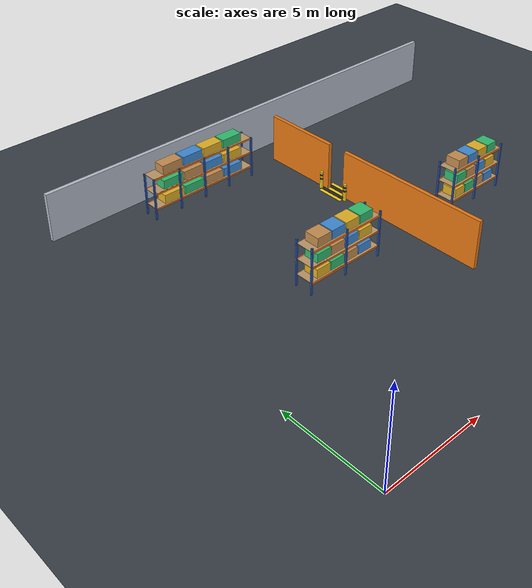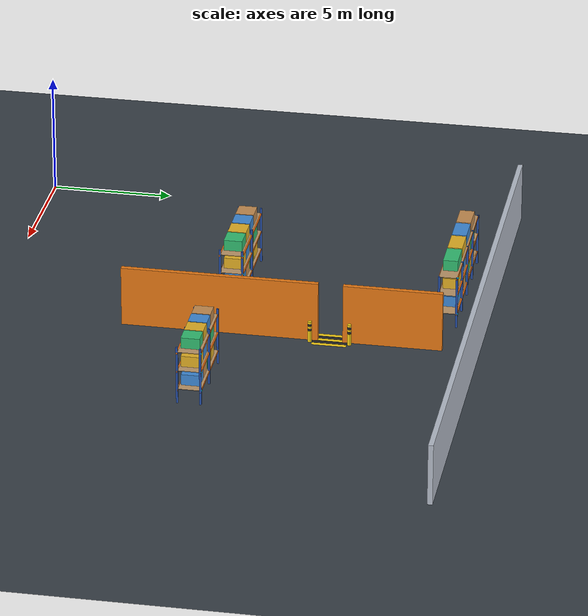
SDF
<sdf version="1.10">
 <world name="warehouse_s4">
  <model name="ground_plane">
   <static>true</static>
   <link name="link">
    <collision name="collision">
     <geometry><plane><normal>0 0 1</normal><size>25 20</size></plane></geometry>
    </collision>
    <visual name="visual">
     <geometry><plane><normal>0 0 1</normal><size>25 20</size></plane></geometry>
     <material>
      <ambient>0.22 0.25 0.28 1</ambient>
      <diffuse>0.22 0.25 0.28 1</diffuse>
      <specular>0.08 0.08 0.08 1</specular>
     </material>
    </visual>
    <pose>12.0 9.5 0 0 0 0</pose>
   </link>
  </model>
  <model name="wall_south">
   <static>true</static>
   <pose>12.0 19.9 1.25 0 0 0</pose>
   <link name="link">
    <collision name="c"><geometry><box><size>25.0 0.2 2.5</size></box></geometry></collision>
    <visual name="v">
     <geometry><box><size>25.0 0.2 2.5</size></box></geometry>
     <material>
      <ambient>0.65 0.68 0.72 1</ambient>
      <diffuse>0.72 0.75 0.80 1</diffuse>
      <specular>0.15 0.15 0.15 1</specular>
     </material>
    </visual>
   </link>
  </model>
  <model name="divider_north">
   <static>true</static>
   <pose>12.0 16.5 1.25 0 0 0</pose>
   <link name="link">
    <collision name="c"><geometry><box><size>0.2 4.0 2.5</size></box></geometry></collision>
    <visual name="v">
     <geometry><box><size>0.2 4.0 2.5</size></box></geometry>
     <material>
      <ambient>0.92 0.48 0.08 1</ambient>
      <diffuse>0.92 0.48 0.08 1</diffuse>
      <specular>0.25 0.25 0.25 1</specular>
     </material>
    </visual>
   </link>
  </model>
  <model name="divider_middle">
   <static>true</static>
   <pose>12.0 9.5 1.25 0 0 0</pose>
   <link name="link">
    <collision name="c"><geometry><box><size>0.2 8.0 2.5</size></box></geometry></collision>
    <visual name="v">
     <geometry><box><size>0.2 8.0 2.5</size></box></geometry>
     <material>
      <ambient>0.92 0.48 0.08 1</ambient>
      <diffuse>0.92 0.48 0.08 1</diffuse>
      <specular>0.25 0.25 0.25 1</specular>
     </material>
    </visual>
   </link>
  </model>
  <model name="choke_hazard_north">
   <static>true</static>
   <pose>12.000 14.000 0 0 0 0</pose>
   <link name="link">
    <visual name="stripe_0">
     <pose>-0.400 0 0.004 0 0 0</pose>
     <geometry><box><size>0.18 1.40 0.003</size></box></geometry>
     <material><ambient>0.95 0.75 0.05 1</ambient><diffuse>0.98 0.82 0.08 1</diffuse></material>
    </visual>
    <visual name="stripe_1">
     <pose>-0.200 0 0.004 0 0 0</pose>
     <geometry><box><size>0.18 1.40 0.003</size></box></geometry>
     <material><ambient>0.1 0.1 0.1 1</ambient><diffuse>0.15 0.15 0.15 1</diffuse></material>
    </visual>
    <visual name="stripe_2">
     <pose>0.000 0 0.004 0 0 0</pose>
     <geometry><box><size>0.18 1.40 0.003</size></box></geometry>
     <material><ambient>0.95 0.75 0.05 1</ambient><diffuse>0.98 0.82 0.08 1</diffuse></material>
    </visual>
    <visual name="stripe_3">
     <pose>0.200 0 0.004 0 0 0</pose>
     <geometry><box><size>0.18 1.40 0.003</size></box></geometry>
     <material><ambient>0.1 0.1 0.1 1</ambient><diffuse>0.15 0.15 0.15 1</diffuse></material>
    </visual>
    <visual name="stripe_4">
     <pose>0.400 0 0.004 0 0 0</pose>
     <geometry><box><size>0.18 1.40 0.003</size></box></geometry>
     <material><ambient>0.95 0.75 0.05 1</ambient><diffuse>0.98 0.82 0.08 1</diffuse></material>
    </visual>
   </link>
  </model>
  <model name="bollard_n_nw">
   <static>true</static>
   <pose>11.750 14.800 0.0 0 0 0</pose>
   <link name="link">
    <visual name="post">
     <pose>0 0 0.45 0 0 0</pose>
     <geometry><cylinder><radius>0.08</radius><length>0.90</length></cylinder></geometry>
     <material>
      <ambient>0.95 0.75 0.05 1</ambient>
      <diffuse>0.98 0.82 0.08 1</diffuse>
      <specular>0.5 0.5 0.5 1</specular>
     </material>
    </visual>
    <visual name="stripe1">
     <pose>0 0 0.55 0 0 0</pose>
     <geometry><cylinder><radius>0.082</radius><length>0.10</length></cylinder></geometry>
     <material><ambient>0.1 0.1 0.1 1</ambient><diffuse>0.15 0.15 0.15 1</diffuse></material>
    </visual>
    <visual name="stripe2">
     <pose>0 0 0.75 0 0 0</pose>
     <geometry><cylinder><radius>0.082</radius><length>0.10</length></cylinder></geometry>
     <material><ambient>0.1 0.1 0.1 1</ambient><diffuse>0.15 0.15 0.15 1</diffuse></material>
    </visual>
   </link>
  </model>
  <model name="bollard_n_sw">
   <static>true</static>
   <pose>11.750 13.200 0.0 0 0 0</pose>
   <link name="link">
    <visual name="post">
     <pose>0 0 0.45 0 0 0</pose>
     <geometry><cylinder><radius>0.08</radius><length>0.90</length></cylinder></geometry>
     <material>
      <ambient>0.95 0.75 0.05 1</ambient>
      <diffuse>0.98 0.82 0.08 1</diffuse>
      <specular>0.5 0.5 0.5 1</specular>
     </material>
    </visual>
    <visual name="stripe1">
     <pose>0 0 0.55 0 0 0</pose>
     <geometry><cylinder><radius>0.082</radius><length>0.10</length></cylinder></geometry>
     <material><ambient>0.1 0.1 0.1 1</ambient><diffuse>0.15 0.15 0.15 1</diffuse></material>
    </visual>
    <visual name="stripe2">
     <pose>0 0 0.75 0 0 0</pose>
     <geometry><cylinder><radius>0.082</radius><length>0.10</length></cylinder></geometry>
     <material><ambient>0.1 0.1 0.1 1</ambient><diffuse>0.15 0.15 0.15 1</diffuse></material>
    </visual>
   </link>
  </model>
  <model name="bollard_n_ne">
   <static>true</static>
   <pose>12.250 14.800 0.0 0 0 0</pose>
   <link name="link">
    <visual name="post">
     <pose>0 0 0.45 0 0 0</pose>
     <geometry><cylinder><radius>0.08</radius><length>0.90</length></cylinder></geometry>
     <material>
      <ambient>0.95 0.75 0.05 1</ambient>
      <diffuse>0.98 0.82 0.08 1</diffuse>
      <specular>0.5 0.5 0.5 1</specular>
     </material>
    </visual>
    <visual name="stripe1">
     <pose>0 0 0.55 0 0 0</pose>
     <geometry><cylinder><radius>0.082</radius><length>0.10</length></cylinder></geometry>
     <material><ambient>0.1 0.1 0.1 1</ambient><diffuse>0.15 0.15 0.15 1</diffuse></material>
    </visual>
    <visual name="stripe2">
     <pose>0 0 0.75 0 0 0</pose>
     <geometry><cylinder><radius>0.082</radius><length>0.10</length></cylinder></geometry>
     <material><ambient>0.1 0.1 0.1 1</ambient><diffuse>0.15 0.15 0.15 1</diffuse></material>
    </visual>
   </link>
  </model>
  <model name="bollard_n_se">
   <static>true</static>
   <pose>12.250 13.200 0.0 0 0 0</pose>
   <link name="link">
    <visual name="post">
     <pose>0 0 0.45 0 0 0</pose>
     <geometry><cylinder><radius>0.08</radius><length>0.90</length></cylinder></geometry>
     <material>
      <ambient>0.95 0.75 0.05 1</ambient>
      <diffuse>0.98 0.82 0.08 1</diffuse>
      <specular>0.5 0.5 0.5 1</specular>
     </material>
    </visual>
    <visual name="stripe1">
     <pose>0 0 0.55 0 0 0</pose>
     <geometry><cylinder><radius>0.082</radius><length>0.10</length></cylinder></geometry>
     <material><ambient>0.1 0.1 0.1 1</ambient><diffuse>0.15 0.15 0.15 1</diffuse></material>
    </visual>
    <visual name="stripe2">
     <pose>0 0 0.75 0 0 0</pose>
     <geometry><cylinder><radius>0.082</radius><length>0.10</length></cylinder></geometry>
     <material><ambient>0.1 0.1 0.1 1</ambient><diffuse>0.15 0.15 0.15 1</diffuse></material>
    </visual>
   </link>
  </model>
  <model name="rack_right_center">
   <static>true</static>
   <pose>16.500 9.500 0.000 0 0 0.0000</pose>
   <link name="link">
    <visual name="post_1">
     <pose>-1.760 -0.460 1.200 0 0 0</pose>
     <geometry><box><size>0.08 0.08 2.400</size></box></geometry>
     <material>
      <ambient>0.10 0.20 0.45 1</ambient>
      <diffuse>0.15 0.32 0.68 1</diffuse>
      <specular>0.3 0.3 0.3 1</specular>
     </material>
    </visual>
    <visual name="post_2">
     <pose>-1.760 0.460 1.200 0 0 0</pose>
     <geometry><box><size>0.08 0.08 2.400</size></box></geometry>
     <material>
      <ambient>0.10 0.20 0.45 1</ambient>
      <diffuse>0.15 0.32 0.68 1</diffuse>
      <specular>0.3 0.3 0.3 1</specular>
     </material>
    </visual>
    <visual name="post_3">
     <pose>1.760 -0.460 1.200 0 0 0</pose>
     <geometry><box><size>0.08 0.08 2.400</size></box></geometry>
     <material>
      <ambient>0.10 0.20 0.45 1</ambient>
      <diffuse>0.15 0.32 0.68 1</diffuse>
      <specular>0.3 0.3 0.3 1</specular>
     </material>
    </visual>
    <visual name="post_4">
     <pose>1.760 0.460 1.200 0 0 0</pose>
     <geometry><box><size>0.08 0.08 2.400</size></box></geometry>
     <material>
      <ambient>0.10 0.20 0.45 1</ambient>
      <diffuse>0.15 0.32 0.68 1</diffuse>
      <specular>0.3 0.3 0.3 1</specular>
     </material>
    </visual>
    <visual name="post_5">
     <pose>0.000 -0.460 1.200 0 0 0</pose>
     <geometry><box><size>0.08 0.08 2.400</size></box></geometry>
     <material>
      <ambient>0.10 0.20 0.45 1</ambient>
      <diffuse>0.15 0.32 0.68 1</diffuse>
      <specular>0.3 0.3 0.3 1</specular>
     </material>
    </visual>
    <visual name="post_6">
     <pose>0.000 0.460 1.200 0 0 0</pose>
     <geometry><box><size>0.08 0.08 2.400</size></box></geometry>
     <material>
      <ambient>0.10 0.20 0.45 1</ambient>
      <diffuse>0.15 0.32 0.68 1</diffuse>
      <specular>0.3 0.3 0.3 1</specular>
     </material>
    </visual>
    <visual name="beam_front_1">
     <pose>0 -0.460 0.550 0 0 0</pose>
     <geometry><box><size>3.600 0.05 0.08</size></box></geometry>
     <material>
      <ambient>0.85 0.35 0.05 1</ambient>
      <diffuse>0.95 0.45 0.08 1</diffuse>
      <specular>0.2 0.2 0.2 1</specular>
     </material>
    </visual>
    <visual name="beam_back_1">
     <pose>0 0.460 0.550 0 0 0</pose>
     <geometry><box><size>3.600 0.05 0.08</size></box></geometry>
     <material>
      <ambient>0.85 0.35 0.05 1</ambient>
      <diffuse>0.95 0.45 0.08 1</diffuse>
      <specular>0.2 0.2 0.2 1</specular>
     </material>
    </visual>
    <visual name="deck_1">
     <pose>0 0 0.580 0 0 0</pose>
     <geometry><box><size>3.500 0.940 0.02</size></box></geometry>
     <material>
      <ambient>0.60 0.48 0.32 1</ambient>
      <diffuse>0.75 0.60 0.42 1</diffuse>
      <specular>0.1 0.1 0.1 1</specular>
     </material>
    </visual>
    <visual name="cargo_t1_b1">
     <pose>-1.080 0 0.825 0 0 0</pose>
     <geometry><box><size>0.675 0.750 0.450</size></box></geometry>
     <material><ambient>0.75 0.55 0.10 1</ambient><diffuse>0.90 0.70 0.15 1</diffuse></material>
    </visual>
    <visual name="cargo_t1_b2">
     <pose>-0.360 0 0.825 0 0 0</pose>
     <geometry><box><size>0.675 0.750 0.450</size></box></geometry>
     <material><ambient>0.15 0.60 0.35 1</ambient><diffuse>0.20 0.75 0.45 1</diffuse></material>
    </visual>
    <visual name="cargo_t1_b3">
     <pose>0.360 0 0.825 0 0 0</pose>
     <geometry><box><size>0.675 0.750 0.450</size></box></geometry>
     <material><ambient>0.65 0.45 0.25 1</ambient><diffuse>0.78 0.56 0.32 1</diffuse></material>
    </visual>
    <visual name="cargo_t1_b4">
     <pose>1.080 0 0.825 0 0 0</pose>
     <geometry><box><size>0.675 0.750 0.450</size></box></geometry>
     <material><ambient>0.20 0.45 0.70 1</ambient><diffuse>0.25 0.55 0.85 1</diffuse></material>
    </visual>
    <visual name="led_indicator_1">
     <pose>1.760 0.500 0.600 0 0 0</pose>
     <geometry><sphere><radius>0.035</radius></sphere></geometry>
     <material>
      <ambient>0.0 0.85 1.0 1</ambient>
      <diffuse>0.0 0.95 1.0 1</diffuse>
      <specular>1 1 1 1</specular>
     </material>
    </visual>
    <visual name="beam_front_2">
     <pose>0 -0.460 1.350 0 0 0</pose>
     <geometry><box><size>3.600 0.05 0.08</size></box></geometry>
     <material>
      <ambient>0.85 0.35 0.05 1</ambient>
      <diffuse>0.95 0.45 0.08 1</diffuse>
      <specular>0.2 0.2 0.2 1</specular>
     </material>
    </visual>
    <visual name="beam_back_2">
     <pose>0 0.460 1.350 0 0 0</pose>
     <geometry><box><size>3.600 0.05 0.08</size></box></geometry>
     <material>
      <ambient>0.85 0.35 0.05 1</ambient>
      <diffuse>0.95 0.45 0.08 1</diffuse>
      <specular>0.2 0.2 0.2 1</specular>
     </material>
    </visual>
    <visual name="deck_2">
     <pose>0 0 1.380 0 0 0</pose>
     <geometry><box><size>3.500 0.940 0.02</size></box></geometry>
     <material>
      <ambient>0.60 0.48 0.32 1</ambient>
      <diffuse>0.75 0.60 0.42 1</diffuse>
      <specular>0.1 0.1 0.1 1</specular>
     </material>
    </visual>
    <visual name="cargo_t2_b1">
     <pose>-1.080 0 1.625 0 0 0</pose>
     <geometry><box><size>0.675 0.750 0.450</size></box></geometry>
     <material><ambient>0.15 0.60 0.35 1</ambient><diffuse>0.20 0.75 0.45 1</diffuse></material>
    </visual>
    <visual name="cargo_t2_b2">
     <pose>-0.360 0 1.625 0 0 0</pose>
     <geometry><box><size>0.675 0.750 0.450</size></box></geometry>
     <material><ambient>0.65 0.45 0.25 1</ambient><diffuse>0.78 0.56 0.32 1</diffuse></material>
    </visual>
    <visual name="cargo_t2_b3">
     <pose>0.360 0 1.625 0 0 0</pose>
     <geometry><box><size>0.675 0.750 0.450</size></box></geometry>
     <material><ambient>0.20 0.45 0.70 1</ambient><diffuse>0.25 0.55 0.85 1</diffuse></material>
    </visual>
    <visual name="cargo_t2_b4">
     <pose>1.080 0 1.625 0 0 0</pose>
     <geometry><box><size>0.675 0.750 0.450</size></box></geometry>
     <material><ambient>0.75 0.55 0.10 1</ambient><diffuse>0.90 0.70 0.15 1</diffuse></material>
    </visual>
    <visual name="led_indicator_2">
     <pose>1.760 0.500 1.400 0 0 0</pose>
     <geometry><sphere><radius>0.035</radius></sphere></geometry>
     <material>
      <ambient>0.0 0.85 1.0 1</ambient>
      <diffuse>0.0 0.95 1.0 1</diffuse>
      <specular>1 1 1 1</specular>
     </material>
    </visual>
    <visual name="beam_front_3">
     <pose>0 -0.460 2.150 0 0 0</pose>
     <geometry><box><size>3.600 0.05 0.08</size></box></geometry>
     <material>
      <ambient>0.85 0.35 0.05 1</ambient>
      <diffuse>0.95 0.45 0.08 1</diffuse>
      <specular>0.2 0.2 0.2 1</specular>
     </material>
    </visual>
    <visual name="beam_back_3">
     <pose>0 0.460 2.150 0 0 0</pose>
     <geometry><box><size>3.600 0.05 0.08</size></box></geometry>
     <material>
      <ambient>0.85 0.35 0.05 1</ambient>
      <diffuse>0.95 0.45 0.08 1</diffuse>
      <specular>0.2 0.2 0.2 1</specular>
     </material>
    </visual>
    <visual name="deck_3">
     <pose>0 0 2.180 0 0 0</pose>
     <geometry><box><size>3.500 0.940 0.02</size></box></geometry>
     <material>
      <ambient>0.60 0.48 0.32 1</ambient>
      <diffuse>0.75 0.60 0.42 1</diffuse>
      <specular>0.1 0.1 0.1 1</specular>
     </material>
    </visual>
    <visual name="cargo_t3_b1">
     <pose>-1.080 0 2.425 0 0 0</pose>
     <geometry><box><size>0.675 0.750 0.450</size></box></geometry>
     <material><ambient>0.65 0.45 0.25 1</ambient><diffuse>0.78 0.56 0.32 1</diffuse></material>
    </visual>
    <visual name="cargo_t3_b2">
     <pose>-0.360 0 2.425 0 0 0</pose>
     <geometry><box><size>0.675 0.750 0.450</size></box></geometry>
     <material><ambient>0.20 0.45 0.70 1</ambient><diffuse>0.25 0.55 0.85 1</diffuse></material>
    </visual>
    <visual name="cargo_t3_b3">
     <pose>0.360 0 2.425 0 0 0</pose>
     <geometry><box><size>0.675 0.750 0.450</size></box></geometry>
     <material><ambient>0.75 0.55 0.10 1</ambient><diffuse>0.90 0.70 0.15 1</diffuse></material>
    </visual>
    <visual name="cargo_t3_b4">
     <pose>1.080 0 2.425 0 0 0</pose>
     <geometry><box><size>0.675 0.750 0.450</size></box></geometry>
     <material><ambient>0.15 0.60 0.35 1</ambient><diffuse>0.20 0.75 0.45 1</diffuse></material>
    </visual>
    <visual name="led_indicator_3">
     <pose>1.760 0.500 2.200 0 0 0</pose>
     <geometry><sphere><radius>0.035</radius></sphere></geometry>
     <material>
      <ambient>0.0 0.85 1.0 1</ambient>
      <diffuse>0.0 0.95 1.0 1</diffuse>
      <specular>1 1 1 1</specular>
     </material>
    </visual>
   </link>
  </model>
  <model name="rack_left_center">
   <static>true</static>
   <pose>7.500 9.500 0.000 0 0 0.0000</pose>
   <link name="link">
    <visual name="post_1">
     <pose>-2.060 -0.460 1.200 0 0 0</pose>
     <geometry><box><size>0.08 0.08 2.400</size></box></geometry>
     <material>
      <ambient>0.10 0.20 0.45 1</ambient>
      <diffuse>0.15 0.32 0.68 1</diffuse>
      <specular>0.3 0.3 0.3 1</specular>
     </material>
    </visual>
    <visual name="post_2">
     <pose>-2.060 0.460 1.200 0 0 0</pose>
     <geometry><box><size>0.08 0.08 2.400</size></box></geometry>
     <material>
      <ambient>0.10 0.20 0.45 1</ambient>
      <diffuse>0.15 0.32 0.68 1</diffuse>
      <specular>0.3 0.3 0.3 1</specular>
     </material>
    </visual>
    <visual name="post_3">
     <pose>2.060 -0.460 1.200 0 0 0</pose>
     <geometry><box><size>0.08 0.08 2.400</size></box></geometry>
     <material>
      <ambient>0.10 0.20 0.45 1</ambient>
      <diffuse>0.15 0.32 0.68 1</diffuse>
      <specular>0.3 0.3 0.3 1</specular>
     </material>
    </visual>
    <visual name="post_4">
     <pose>2.060 0.460 1.200 0 0 0</pose>
     <geometry><box><size>0.08 0.08 2.400</size></box></geometry>
     <material>
      <ambient>0.10 0.20 0.45 1</ambient>
      <diffuse>0.15 0.32 0.68 1</diffuse>
      <specular>0.3 0.3 0.3 1</specular>
     </material>
    </visual>
    <visual name="post_5">
     <pose>0.000 -0.460 1.200 0 0 0</pose>
     <geometry><box><size>0.08 0.08 2.400</size></box></geometry>
     <material>
      <ambient>0.10 0.20 0.45 1</ambient>
      <diffuse>0.15 0.32 0.68 1</diffuse>
      <specular>0.3 0.3 0.3 1</specular>
     </material>
    </visual>
    <visual name="post_6">
     <pose>0.000 0.460 1.200 0 0 0</pose>
     <geometry><box><size>0.08 0.08 2.400</size></box></geometry>
     <material>
      <ambient>0.10 0.20 0.45 1</ambient>
      <diffuse>0.15 0.32 0.68 1</diffuse>
      <specular>0.3 0.3 0.3 1</specular>
     </material>
    </visual>
    <visual name="beam_front_1">
     <pose>0 -0.460 0.550 0 0 0</pose>
     <geometry><box><size>4.200 0.05 0.08</size></box></geometry>
     <material>
      <ambient>0.85 0.35 0.05 1</ambient>
      <diffuse>0.95 0.45 0.08 1</diffuse>
      <specular>0.2 0.2 0.2 1</specular>
     </material>
    </visual>
    <visual name="beam_back_1">
     <pose>0 0.460 0.550 0 0 0</pose>
     <geometry><box><size>4.200 0.05 0.08</size></box></geometry>
     <material>
      <ambient>0.85 0.35 0.05 1</ambient>
      <diffuse>0.95 0.45 0.08 1</diffuse>
      <specular>0.2 0.2 0.2 1</specular>
     </material>
    </visual>
    <visual name="deck_1">
     <pose>0 0 0.580 0 0 0</pose>
     <geometry><box><size>4.100 0.940 0.02</size></box></geometry>
     <material>
      <ambient>0.60 0.48 0.32 1</ambient>
      <diffuse>0.75 0.60 0.42 1</diffuse>
      <specular>0.1 0.1 0.1 1</specular>
     </material>
    </visual>
    <visual name="cargo_t1_b1">
     <pose>-1.260 0 0.825 0 0 0</pose>
     <geometry><box><size>0.788 0.750 0.450</size></box></geometry>
     <material><ambient>0.75 0.55 0.10 1</ambient><diffuse>0.90 0.70 0.15 1</diffuse></material>
    </visual>
    <visual name="cargo_t1_b2">
     <pose>-0.420 0 0.825 0 0 0</pose>
     <geometry><box><size>0.788 0.750 0.450</size></box></geometry>
     <material><ambient>0.15 0.60 0.35 1</ambient><diffuse>0.20 0.75 0.45 1</diffuse></material>
    </visual>
    <visual name="cargo_t1_b3">
     <pose>0.420 0 0.825 0 0 0</pose>
     <geometry><box><size>0.788 0.750 0.450</size></box></geometry>
     <material><ambient>0.65 0.45 0.25 1</ambient><diffuse>0.78 0.56 0.32 1</diffuse></material>
    </visual>
    <visual name="cargo_t1_b4">
     <pose>1.260 0 0.825 0 0 0</pose>
     <geometry><box><size>0.788 0.750 0.450</size></box></geometry>
     <material><ambient>0.20 0.45 0.70 1</ambient><diffuse>0.25 0.55 0.85 1</diffuse></material>
    </visual>
    <visual name="led_indicator_1">
     <pose>2.060 0.500 0.600 0 0 0</pose>
     <geometry><sphere><radius>0.035</radius></sphere></geometry>
     <material>
      <ambient>0.0 0.85 1.0 1</ambient>
      <diffuse>0.0 0.95 1.0 1</diffuse>
      <specular>1 1 1 1</specular>
     </material>
    </visual>
    <visual name="beam_front_2">
     <pose>0 -0.460 1.350 0 0 0</pose>
     <geometry><box><size>4.200 0.05 0.08</size></box></geometry>
     <material>
      <ambient>0.85 0.35 0.05 1</ambient>
      <diffuse>0.95 0.45 0.08 1</diffuse>
      <specular>0.2 0.2 0.2 1</specular>
     </material>
    </visual>
    <visual name="beam_back_2">
     <pose>0 0.460 1.350 0 0 0</pose>
     <geometry><box><size>4.200 0.05 0.08</size></box></geometry>
     <material>
      <ambient>0.85 0.35 0.05 1</ambient>
      <diffuse>0.95 0.45 0.08 1</diffuse>
      <specular>0.2 0.2 0.2 1</specular>
     </material>
    </visual>
    <visual name="deck_2">
     <pose>0 0 1.380 0 0 0</pose>
     <geometry><box><size>4.100 0.940 0.02</size></box></geometry>
     <material>
      <ambient>0.60 0.48 0.32 1</ambient>
      <diffuse>0.75 0.60 0.42 1</diffuse>
      <specular>0.1 0.1 0.1 1</specular>
     </material>
    </visual>
    <visual name="cargo_t2_b1">
     <pose>-1.260 0 1.625 0 0 0</pose>
     <geometry><box><size>0.788 0.750 0.450</size></box></geometry>
     <material><ambient>0.15 0.60 0.35 1</ambient><diffuse>0.20 0.75 0.45 1</diffuse></material>
    </visual>
    <visual name="cargo_t2_b2">
     <pose>-0.420 0 1.625 0 0 0</pose>
     <geometry><box><size>0.788 0.750 0.450</size></box></geometry>
     <material><ambient>0.65 0.45 0.25 1</ambient><diffuse>0.78 0.56 0.32 1</diffuse></material>
    </visual>
    <visual name="cargo_t2_b3">
     <pose>0.420 0 1.625 0 0 0</pose>
     <geometry><box><size>0.788 0.750 0.450</size></box></geometry>
     <material><ambient>0.20 0.45 0.70 1</ambient><diffuse>0.25 0.55 0.85 1</diffuse></material>
    </visual>
    <visual name="cargo_t2_b4">
     <pose>1.260 0 1.625 0 0 0</pose>
     <geometry><box><size>0.788 0.750 0.450</size></box></geometry>
     <material><ambient>0.75 0.55 0.10 1</ambient><diffuse>0.90 0.70 0.15 1</diffuse></material>
    </visual>
    <visual name="led_indicator_2">
     <pose>2.060 0.500 1.400 0 0 0</pose>
     <geometry><sphere><radius>0.035</radius></sphere></geometry>
     <material>
      <ambient>0.0 0.85 1.0 1</ambient>
      <diffuse>0.0 0.95 1.0 1</diffuse>
      <specular>1 1 1 1</specular>
     </material>
    </visual>
    <visual name="beam_front_3">
     <pose>0 -0.460 2.150 0 0 0</pose>
     <geometry><box><size>4.200 0.05 0.08</size></box></geometry>
     <material>
      <ambient>0.85 0.35 0.05 1</ambient>
      <diffuse>0.95 0.45 0.08 1</diffuse>
      <specular>0.2 0.2 0.2 1</specular>
     </material>
    </visual>
    <visual name="beam_back_3">
     <pose>0 0.460 2.150 0 0 0</pose>
     <geometry><box><size>4.200 0.05 0.08</size></box></geometry>
     <material>
      <ambient>0.85 0.35 0.05 1</ambient>
      <diffuse>0.95 0.45 0.08 1</diffuse>
      <specular>0.2 0.2 0.2 1</specular>
     </material>
    </visual>
    <visual name="deck_3">
     <pose>0 0 2.180 0 0 0</pose>
     <geometry><box><size>4.100 0.940 0.02</size></box></geometry>
     <material>
      <ambient>0.60 0.48 0.32 1</ambient>
      <diffuse>0.75 0.60 0.42 1</diffuse>
      <specular>0.1 0.1 0.1 1</specular>
     </material>
    </visual>
    <visual name="cargo_t3_b1">
     <pose>-1.260 0 2.425 0 0 0</pose>
     <geometry><box><size>0.788 0.750 0.450</size></box></geometry>
     <material><ambient>0.65 0.45 0.25 1</ambient><diffuse>0.78 0.56 0.32 1</diffuse></material>
    </visual>
    <visual name="cargo_t3_b2">
     <pose>-0.420 0 2.425 0 0 0</pose>
     <geometry><box><size>0.788 0.750 0.450</size></box></geometry>
     <material><ambient>0.20 0.45 0.70 1</ambient><diffuse>0.25 0.55 0.85 1</diffuse></material>
    </visual>
    <visual name="cargo_t3_b3">
     <pose>0.420 0 2.425 0 0 0</pose>
     <geometry><box><size>0.788 0.750 0.450</size></box></geometry>
     <material><ambient>0.75 0.55 0.10 1</ambient><diffuse>0.90 0.70 0.15 1</diffuse></material>
    </visual>
    <visual name="cargo_t3_b4">
     <pose>1.260 0 2.425 0 0 0</pose>
     <geometry><box><size>0.788 0.750 0.450</size></box></geometry>
     <material><ambient>0.15 0.60 0.35 1</ambient><diffuse>0.20 0.75 0.45 1</diffuse></material>
    </visual>
    <visual name="led_indicator_3">
     <pose>2.060 0.500 2.200 0 0 0</pose>
     <geometry><sphere><radius>0.035</radius></sphere></geometry>
     <material>
      <ambient>0.0 0.85 1.0 1</ambient>
      <diffuse>0.0 0.95 1.0 1</diffuse>
      <specular>1 1 1 1</specular>
     </material>
    </visual>
   </link>
  </model>
  <model name="rack_left_north">
   <static>true</static>
   <pose>7.000 18.400 0.000 0 0 0.0000</pose>
   <link name="link">
    <visual name="post_1">
     <pose>-2.960 -0.360 1.100 0 0 0</pose>
     <geometry><box><size>0.08 0.08 2.200</size></box></geometry>
     <material>
      <ambient>0.10 0.20 0.45 1</ambient>
      <diffuse>0.15 0.32 0.68 1</diffuse>
      <specular>0.3 0.3 0.3 1</specular>
     </material>
    </visual>
    <visual name="post_2">
     <pose>-2.960 0.360 1.100 0 0 0</pose>
     <geometry><box><size>0.08 0.08 2.200</size></box></geometry>
     <material>
      <ambient>0.10 0.20 0.45 1</ambient>
      <diffuse>0.15 0.32 0.68 1</diffuse>
      <specular>0.3 0.3 0.3 1</specular>
     </material>
    </visual>
    <visual name="post_3">
     <pose>2.960 -0.360 1.100 0 0 0</pose>
     <geometry><box><size>0.08 0.08 2.200</size></box></geometry>
     <material>
      <ambient>0.10 0.20 0.45 1</ambient>
      <diffuse>0.15 0.32 0.68 1</diffuse>
      <specular>0.3 0.3 0.3 1</specular>
     </material>
    </visual>
    <visual name="post_4">
     <pose>2.960 0.360 1.100 0 0 0</pose>
     <geometry><box><size>0.08 0.08 2.200</size></box></geometry>
     <material>
      <ambient>0.10 0.20 0.45 1</ambient>
      <diffuse>0.15 0.32 0.68 1</diffuse>
      <specular>0.3 0.3 0.3 1</specular>
     </material>
    </visual>
    <visual name="post_5">
     <pose>0.000 -0.360 1.100 0 0 0</pose>
     <geometry><box><size>0.08 0.08 2.200</size></box></geometry>
     <material>
      <ambient>0.10 0.20 0.45 1</ambient>
      <diffuse>0.15 0.32 0.68 1</diffuse>
      <specular>0.3 0.3 0.3 1</specular>
     </material>
    </visual>
    <visual name="post_6">
     <pose>0.000 0.360 1.100 0 0 0</pose>
     <geometry><box><size>0.08 0.08 2.200</size></box></geometry>
     <material>
      <ambient>0.10 0.20 0.45 1</ambient>
      <diffuse>0.15 0.32 0.68 1</diffuse>
      <specular>0.3 0.3 0.3 1</specular>
     </material>
    </visual>
    <visual name="post_7">
     <pose>-1.480 -0.360 1.100 0 0 0</pose>
     <geometry><box><size>0.08 0.08 2.200</size></box></geometry>
     <material>
      <ambient>0.10 0.20 0.45 1</ambient>
      <diffuse>0.15 0.32 0.68 1</diffuse>
      <specular>0.3 0.3 0.3 1</specular>
     </material>
    </visual>
    <visual name="post_8">
     <pose>-1.480 0.360 1.100 0 0 0</pose>
     <geometry><box><size>0.08 0.08 2.200</size></box></geometry>
     <material>
      <ambient>0.10 0.20 0.45 1</ambient>
      <diffuse>0.15 0.32 0.68 1</diffuse>
      <specular>0.3 0.3 0.3 1</specular>
     </material>
    </visual>
    <visual name="post_9">
     <pose>1.480 -0.360 1.100 0 0 0</pose>
     <geometry><box><size>0.08 0.08 2.200</size></box></geometry>
     <material>
      <ambient>0.10 0.20 0.45 1</ambient>
      <diffuse>0.15 0.32 0.68 1</diffuse>
      <specular>0.3 0.3 0.3 1</specular>
     </material>
    </visual>
    <visual name="post_10">
     <pose>1.480 0.360 1.100 0 0 0</pose>
     <geometry><box><size>0.08 0.08 2.200</size></box></geometry>
     <material>
      <ambient>0.10 0.20 0.45 1</ambient>
      <diffuse>0.15 0.32 0.68 1</diffuse>
      <specular>0.3 0.3 0.3 1</specular>
     </material>
    </visual>
    <visual name="beam_front_1">
     <pose>0 -0.360 0.550 0 0 0</pose>
     <geometry><box><size>6.000 0.05 0.08</size></box></geometry>
     <material>
      <ambient>0.85 0.35 0.05 1</ambient>
      <diffuse>0.95 0.45 0.08 1</diffuse>
      <specular>0.2 0.2 0.2 1</specular>
     </material>
    </visual>
    <visual name="beam_back_1">
     <pose>0 0.360 0.550 0 0 0</pose>
     <geometry><box><size>6.000 0.05 0.08</size></box></geometry>
     <material>
      <ambient>0.85 0.35 0.05 1</ambient>
      <diffuse>0.95 0.45 0.08 1</diffuse>
      <specular>0.2 0.2 0.2 1</specular>
     </material>
    </visual>
    <visual name="deck_1">
     <pose>0 0 0.580 0 0 0</pose>
     <geometry><box><size>5.900 0.740 0.02</size></box></geometry>
     <material>
      <ambient>0.60 0.48 0.32 1</ambient>
      <diffuse>0.75 0.60 0.42 1</diffuse>
      <specular>0.1 0.1 0.1 1</specular>
     </material>
    </visual>
    <visual name="cargo_t1_b1">
     <pose>-1.800 0 0.825 0 0 0</pose>
     <geometry><box><size>1.125 0.600 0.450</size></box></geometry>
     <material><ambient>0.75 0.55 0.10 1</ambient><diffuse>0.90 0.70 0.15 1</diffuse></material>
    </visual>
    <visual name="cargo_t1_b2">
     <pose>-0.600 0 0.825 0 0 0</pose>
     <geometry><box><size>1.125 0.600 0.450</size></box></geometry>
     <material><ambient>0.15 0.60 0.35 1</ambient><diffuse>0.20 0.75 0.45 1</diffuse></material>
    </visual>
    <visual name="cargo_t1_b3">
     <pose>0.600 0 0.825 0 0 0</pose>
     <geometry><box><size>1.125 0.600 0.450</size></box></geometry>
     <material><ambient>0.65 0.45 0.25 1</ambient><diffuse>0.78 0.56 0.32 1</diffuse></material>
    </visual>
    <visual name="cargo_t1_b4">
     <pose>1.800 0 0.825 0 0 0</pose>
     <geometry><box><size>1.125 0.600 0.450</size></box></geometry>
     <material><ambient>0.20 0.45 0.70 1</ambient><diffuse>0.25 0.55 0.85 1</diffuse></material>
    </visual>
    <visual name="led_indicator_1">
     <pose>2.960 0.400 0.600 0 0 0</pose>
     <geometry><sphere><radius>0.035</radius></sphere></geometry>
     <material>
      <ambient>0.0 0.85 1.0 1</ambient>
      <diffuse>0.0 0.95 1.0 1</diffuse>
      <specular>1 1 1 1</specular>
     </material>
    </visual>
    <visual name="beam_front_2">
     <pose>0 -0.360 1.350 0 0 0</pose>
     <geometry><box><size>6.000 0.05 0.08</size></box></geometry>
     <material>
      <ambient>0.85 0.35 0.05 1</ambient>
      <diffuse>0.95 0.45 0.08 1</diffuse>
      <specular>0.2 0.2 0.2 1</specular>
     </material>
    </visual>
    <visual name="beam_back_2">
     <pose>0 0.360 1.350 0 0 0</pose>
     <geometry><box><size>6.000 0.05 0.08</size></box></geometry>
     <material>
      <ambient>0.85 0.35 0.05 1</ambient>
      <diffuse>0.95 0.45 0.08 1</diffuse>
      <specular>0.2 0.2 0.2 1</specular>
     </material>
    </visual>
    <visual name="deck_2">
     <pose>0 0 1.380 0 0 0</pose>
     <geometry><box><size>5.900 0.740 0.02</size></box></geometry>
     <material>
      <ambient>0.60 0.48 0.32 1</ambient>
      <diffuse>0.75 0.60 0.42 1</diffuse>
      <specular>0.1 0.1 0.1 1</specular>
     </material>
    </visual>
    <visual name="cargo_t2_b1">
     <pose>-1.800 0 1.625 0 0 0</pose>
     <geometry><box><size>1.125 0.600 0.450</size></box></geometry>
     <material><ambient>0.15 0.60 0.35 1</ambient><diffuse>0.20 0.75 0.45 1</diffuse></material>
    </visual>
    <visual name="cargo_t2_b2">
     <pose>-0.600 0 1.625 0 0 0</pose>
     <geometry><box><size>1.125 0.600 0.450</size></box></geometry>
     <material><ambient>0.65 0.45 0.25 1</ambient><diffuse>0.78 0.56 0.32 1</diffuse></material>
    </visual>
    <visual name="cargo_t2_b3">
     <pose>0.600 0 1.625 0 0 0</pose>
     <geometry><box><size>1.125 0.600 0.450</size></box></geometry>
     <material><ambient>0.20 0.45 0.70 1</ambient><diffuse>0.25 0.55 0.85 1</diffuse></material>
    </visual>
    <visual name="cargo_t2_b4">
     <pose>1.800 0 1.625 0 0 0</pose>
     <geometry><box><size>1.125 0.600 0.450</size></box></geometry>
     <material><ambient>0.75 0.55 0.10 1</ambient><diffuse>0.90 0.70 0.15 1</diffuse></material>
    </visual>
    <visual name="led_indicator_2">
     <pose>2.960 0.400 1.400 0 0 0</pose>
     <geometry><sphere><radius>0.035</radius></sphere></geometry>
     <material>
      <ambient>0.0 0.85 1.0 1</ambient>
      <diffuse>0.0 0.95 1.0 1</diffuse>
      <specular>1 1 1 1</specular>
     </material>
    </visual>
    <visual name="beam_front_3">
     <pose>0 -0.360 2.150 0 0 0</pose>
     <geometry><box><size>6.000 0.05 0.08</size></box></geometry>
     <material>
      <ambient>0.85 0.35 0.05 1</ambient>
      <diffuse>0.95 0.45 0.08 1</diffuse>
      <specular>0.2 0.2 0.2 1</specular>
     </material>
    </visual>
    <visual name="beam_back_3">
     <pose>0 0.360 2.150 0 0 0</pose>
     <geometry><box><size>6.000 0.05 0.08</size></box></geometry>
     <material>
      <ambient>0.85 0.35 0.05 1</ambient>
      <diffuse>0.95 0.45 0.08 1</diffuse>
      <specular>0.2 0.2 0.2 1</specular>
     </material>
    </visual>
    <visual name="deck_3">
     <pose>0 0 2.180 0 0 0</pose>
     <geometry><box><size>5.900 0.740 0.02</size></box></geometry>
     <material>
      <ambient>0.60 0.48 0.32 1</ambient>
      <diffuse>0.75 0.60 0.42 1</diffuse>
      <specular>0.1 0.1 0.1 1</specular>
     </material>
    </visual>
    <visual name="cargo_t3_b1">
     <pose>-1.800 0 2.425 0 0 0</pose>
     <geometry><box><size>1.125 0.600 0.450</size></box></geometry>
     <material><ambient>0.65 0.45 0.25 1</ambient><diffuse>0.78 0.56 0.32 1</diffuse></material>
    </visual>
    <visual name="cargo_t3_b2">
     <pose>-0.600 0 2.425 0 0 0</pose>
     <geometry><box><size>1.125 0.600 0.450</size></box></geometry>
     <material><ambient>0.20 0.45 0.70 1</ambient><diffuse>0.25 0.55 0.85 1</diffuse></material>
    </visual>
    <visual name="cargo_t3_b3">
     <pose>0.600 0 2.425 0 0 0</pose>
     <geometry><box><size>1.125 0.600 0.450</size></box></geometry>
     <material><ambient>0.75 0.55 0.10 1</ambient><diffuse>0.90 0.70 0.15 1</diffuse></material>
    </visual>
    <visual name="cargo_t3_b4">
     <pose>1.800 0 2.425 0 0 0</pose>
     <geometry><box><size>1.125 0.600 0.450</size></box></geometry>
     <material><ambient>0.15 0.60 0.35 1</ambient><diffuse>0.20 0.75 0.45 1</diffuse></material>
    </visual>
    <visual name="led_indicator_3">
     <pose>2.960 0.400 2.200 0 0 0</pose>
     <geometry><sphere><radius>0.035</radius></sphere></geometry>
     <material>
      <ambient>0.0 0.85 1.0 1</ambient>
      <diffuse>0.0 0.95 1.0 1</diffuse>
      <specular>1 1 1 1</specular>
     </material>
    </visual>
   </link>
  </model>
 </world>
</sdf>
